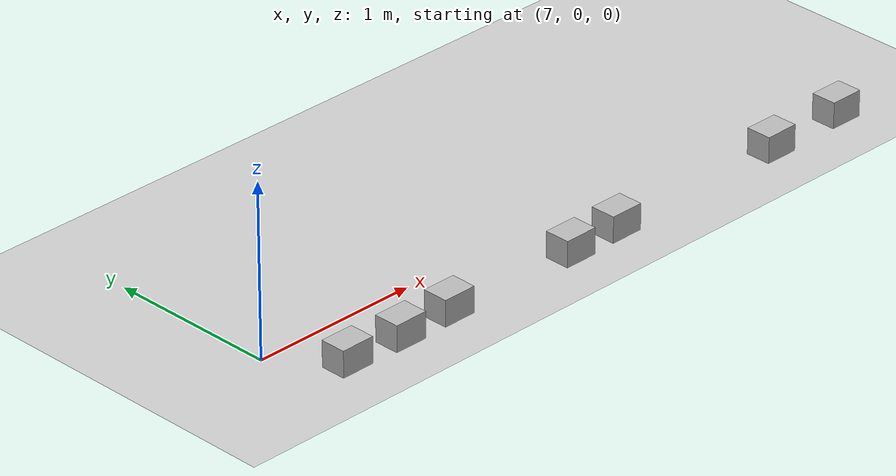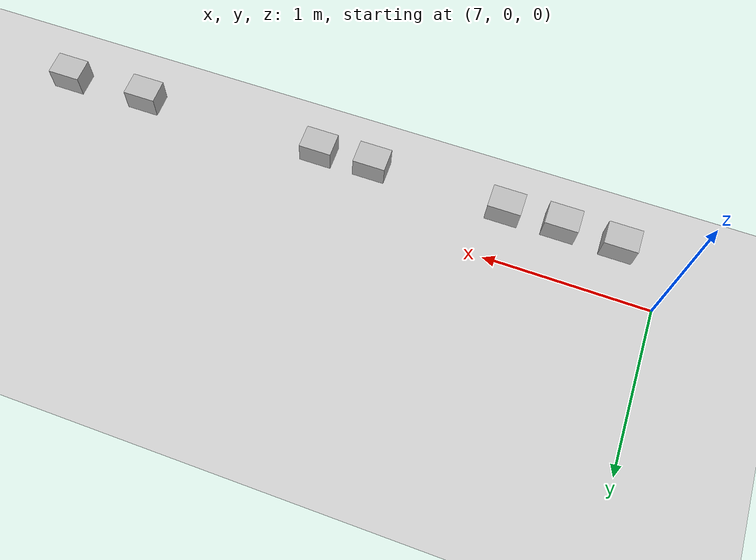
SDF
<sdf version="1.7">
 <world name="easy_track">
  <model name="track">
   <static>1</static>
   <link name="track">
    <collision name="collision">
     <geometry><plane><normal>0 0 1</normal><size>20 10</size></plane></geometry>
     <surface><friction><ode><mu>100</mu><mu2>50</mu2></ode></friction></surface>
    </collision>
    <visual name="visual">
     <cast_shadows>0</cast_shadows>
     <geometry><plane><normal>0 0 1</normal><size>20 5</size></plane></geometry>
     <material>
      <script>
       <uri>model://test-parking/materials/scripts</uri>
       <uri>model://test-parking/materials/textures</uri>
       <name>basic_track/Image</name>
      </script>
     </material>
    </visual>
   </link>
   <pose>9.19 1.81 0 0 -0 0</pose>
  </model>
  <light name="sun" type="directional">
   <pose>0 0 10 0 -0 0</pose>
   <diffuse>0.8 0.8 0.8 1</diffuse>
   <specular>0.2 0.2 0.2 1</specular>
   <attenuation>
    <range>1000</range>
    <constant>0.9</constant>
    <linear>0.01</linear>
    <quadratic>0.001</quadratic>
   </attenuation>
   <direction>-0.5 0.1 -0.9</direction>
   <spot><inner_angle>0</inner_angle><outer_angle>0</outer_angle><falloff>0</falloff></spot>
  </light>
  <gravity>0 0 -9.8</gravity>
  <magnetic_field>6e-06 2.3e-05 -4.2e-05</magnetic_field>
  <atmosphere type="adiabatic"/>
  <physics type="ode">
   <max_step_size>0.001</max_step_size>
   <real_time_factor>1</real_time_factor>
   <real_time_update_rate>1000</real_time_update_rate>
  </physics>
  <scene><ambient>0.4 0.4 0.4 1</ambient><background>0.7 0.7 0.7 1</background><shadows>1</shadows></scene>
  <spherical_coordinates>
   <surface_model>EARTH_WGS84</surface_model>
   <latitude_deg>0</latitude_deg>
   <longitude_deg>0</longitude_deg>
   <elevation>0</elevation>
   <heading_deg>0</heading_deg>
  </spherical_coordinates>
  <model name="box">
   <pose>7.27056 -0.327141 0 0 -0 0</pose>
   <static>1</static>
   <link name="link">
    <inertial>
     <mass>1</mass>
     <inertia><ixx>0.083</ixx><ixy>0</ixy><ixz>0</ixz><iyy>0.083</iyy><iyz>0</iyz><izz>0.083</izz></inertia>
    </inertial>
    <collision name="collision"><geometry><box><size>0.2 0.15 0.3</size></box></geometry></collision>
    <visual name="visual">
     <material><script><uri>__default__</uri><name>__default__</name></script></material>
     <geometry><box><size>0.2 0.15 0.3</size></box></geometry>
    </visual>
   </link>
  </model>
  <model name="box_0">
   <pose>7.62285 -0.33836 0 0 -0 0</pose>
   <static>1</static>
   <link name="link">
    <inertial>
     <mass>1</mass>
     <inertia><ixx>0.083</ixx><ixy>0</ixy><ixz>0</ixz><iyy>0.083</iyy><iyz>0</iyz><izz>0.083</izz></inertia>
    </inertial>
    <collision name="collision"><geometry><box><size>0.2 0.15 0.3</size></box></geometry></collision>
    <visual name="visual">
     <material><script><uri>__default__</uri><name>__default__</name></script></material>
     <geometry><box><size>0.2 0.15 0.3</size></box></geometry>
    </visual>
   </link>
  </model>
  <model name="box_1">
   <pose>7.96413 -0.332903 0 0 -0 0</pose>
   <static>1</static>
   <link name="link">
    <inertial>
     <mass>1</mass>
     <inertia><ixx>0.083</ixx><ixy>0</ixy><ixz>0</ixz><iyy>0.083</iyy><iyz>0</iyz><izz>0.083</izz></inertia>
    </inertial>
    <collision name="collision"><geometry><box><size>0.2 0.15 0.3</size></box></geometry></collision>
    <visual name="visual">
     <material><script><uri>__default__</uri><name>__default__</name></script></material>
     <geometry><box><size>0.2 0.15 0.3</size></box></geometry>
    </visual>
   </link>
  </model>
  <model name="box_2">
   <pose>8.80591 -0.35227 0 0 -0 0</pose>
   <static>1</static>
   <link name="link">
    <inertial>
     <mass>1</mass>
     <inertia><ixx>0.083</ixx><ixy>0</ixy><ixz>0</ixz><iyy>0.083</iyy><iyz>0</iyz><izz>0.083</izz></inertia>
    </inertial>
    <collision name="collision"><geometry><box><size>0.2 0.15 0.3</size></box></geometry></collision>
    <visual name="visual">
     <material><script><uri>__default__</uri><name>__default__</name></script></material>
     <geometry><box><size>0.2 0.15 0.3</size></box></geometry>
    </visual>
   </link>
  </model>
  <model name="box_3">
   <pose>9.14642 -0.343301 0 0 -0 0</pose>
   <static>1</static>
   <link name="link">
    <inertial>
     <mass>1</mass>
     <inertia><ixx>0.083</ixx><ixy>0</ixy><ixz>0</ixz><iyy>0.083</iyy><iyz>0</iyz><izz>0.083</izz></inertia>
    </inertial>
    <collision name="collision"><geometry><box><size>0.2 0.15 0.3</size></box></geometry></collision>
    <visual name="visual">
     <material><script><uri>__default__</uri><name>__default__</name></script></material>
     <geometry><box><size>0.2 0.15 0.3</size></box></geometry>
    </visual>
   </link>
  </model>
  <model name="box_4">
   <pose>10.3102 -0.338035 0 0 -0 0</pose>
   <static>1</static>
   <link name="link">
    <inertial>
     <mass>1</mass>
     <inertia><ixx>0.083</ixx><ixy>0</ixy><ixz>0</ixz><iyy>0.083</iyy><iyz>0</iyz><izz>0.083</izz></inertia>
    </inertial>
    <collision name="collision"><geometry><box><size>0.2 0.15 0.3</size></box></geometry></collision>
    <visual name="visual">
     <material><script><uri>__default__</uri><name>__default__</name></script></material>
     <geometry><box><size>0.2 0.15 0.3</size></box></geometry>
    </visual>
   </link>
  </model>
  <model name="box_5">
   <pose>10.8245 -0.324791 0 0 -0 0</pose>
   <static>1</static>
   <link name="link">
    <inertial>
     <mass>1</mass>
     <inertia><ixx>0.083</ixx><ixy>0</ixy><ixz>0</ixz><iyy>0.083</iyy><iyz>0</iyz><izz>0.083</izz></inertia>
    </inertial>
    <collision name="collision"><geometry><box><size>0.2 0.15 0.3</size></box></geometry></collision>
    <visual name="visual">
     <material><script><uri>__default__</uri><name>__default__</name></script></material>
     <geometry><box><size>0.2 0.15 0.3</size></box></geometry>
    </visual>
   </link>
  </model>
 </world>
</sdf>
